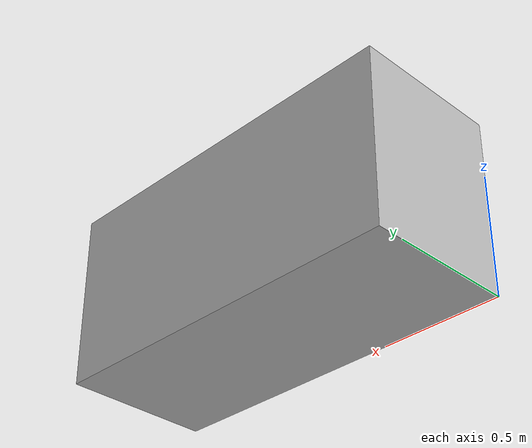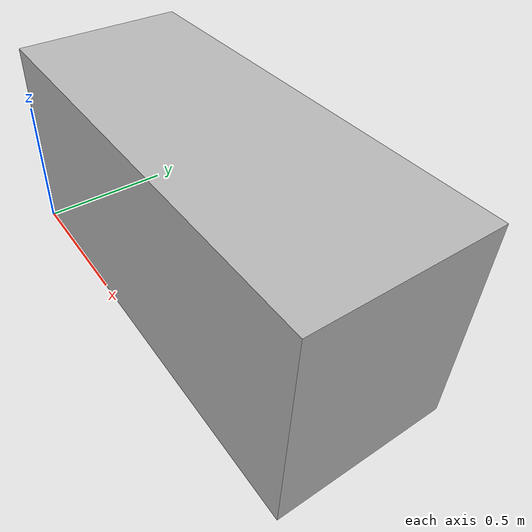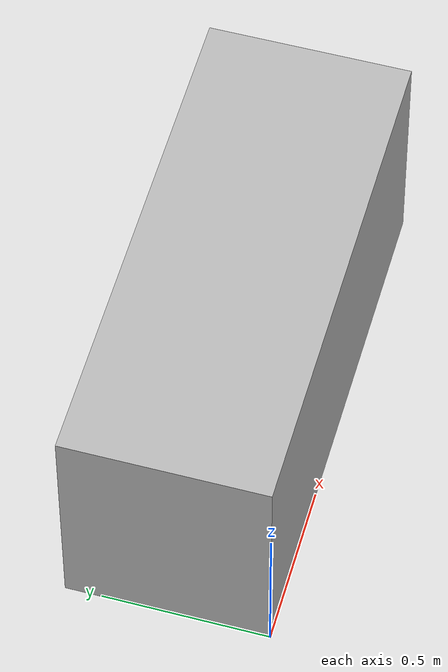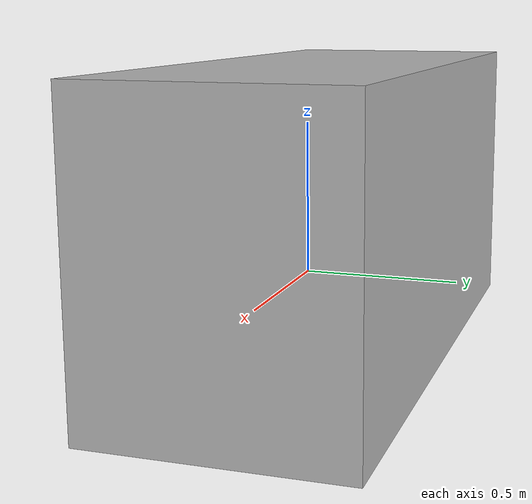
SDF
<?xml version="1.0" ?>
<sdf version='1.4'>
  <model name="rarelab_long_table">
      <static>1</static>
      <link name='link'>
        <inertial>
          <mass>0.0592855</mass>
          <inertia>
            <ixx>2.31818050784e-05</ixx>
            <ixy>0.000000</ixy>
            <ixz>0.000000</ixz>
            <iyy>2.31851837098e-05</iyy>
            <iyz>0.000000</iyz>
            <izz>8.88944636856e-06</izz>
          </inertia>
        </inertial>
        <collision name='collision'>
          <geometry>
            <mesh>
              <uri>model://rarelab_long_table/meshes/rarelab_long_table.stl</uri>
              <scale>1 1 1</scale>
            </mesh>
          </geometry>
          <surface>
            <friction>
              <ode>
                <mu>30.0</mu>
                <mu2>30.0</mu2>
              </ode>
            </friction>
          </surface>
        </collision>
        <visual name='visual'>
          <geometry>
            <mesh>
              <uri>model://rarelab_long_table/meshes/rarelab_long_table.dae</uri>
              <scale>1 1 1</scale>
            </mesh>
          </geometry>
        </visual>
        <velocity_decay>
          <linear>0.000000</linear>
          <angular>0.000000</angular>
        </velocity_decay>
        <self_collide>0</self_collide>
        <kinematic>0</kinematic>
        <gravity>1</gravity>
      </link>
  </model>
</sdf>
